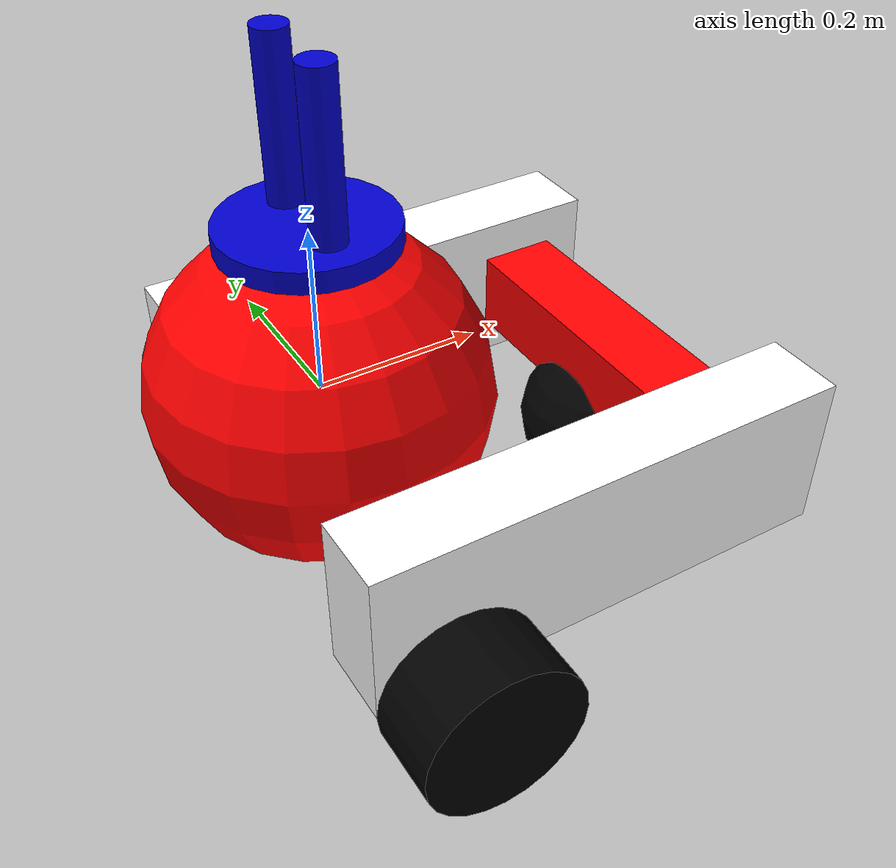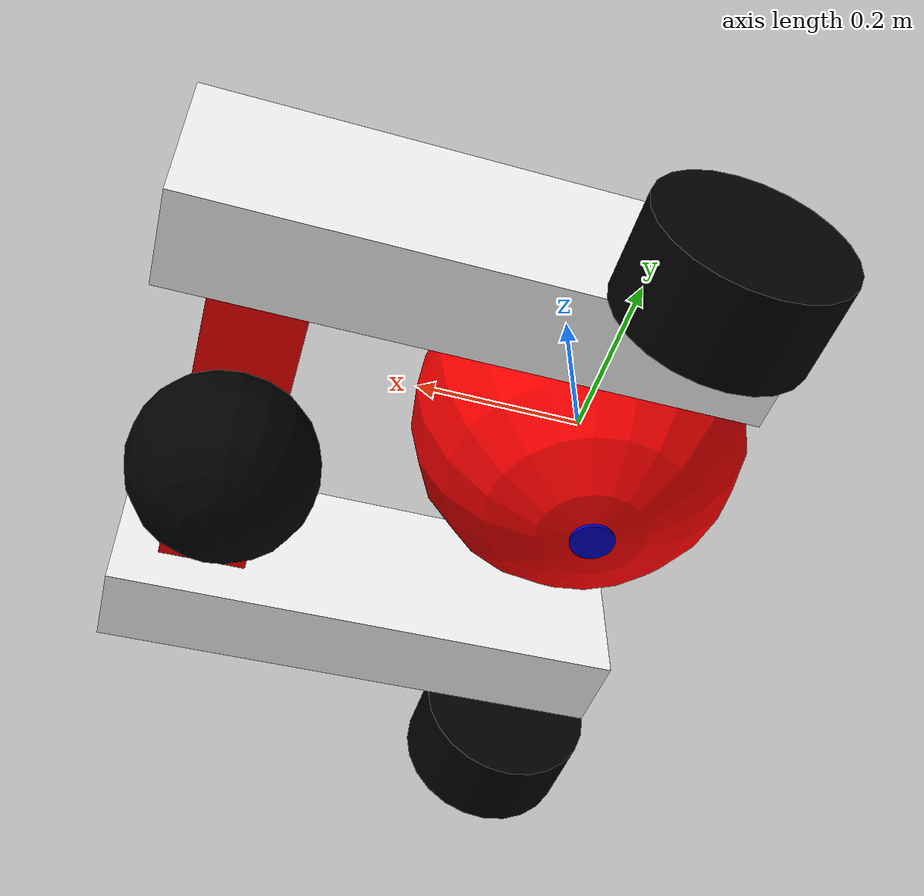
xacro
<?xml version="1.0"?>
<robot name="robot" xmlns:xacro="http://ros.org/wiki/xacro">

  <xacro:include filename="$(find robot_description)/urdf/gazebo.urdf.xacro" />
  <xacro:property name="width" value="0.2" />
  <xacro:property name="leglen" value="0.6" />
  <xacro:property name="legwidth" value="0.1" />
  <xacro:property name="legheight" value="0.2" />
  <xacro:property name="wheeldiam" value="0.2" />

  <material name="blue">
    <color rgba="0 0 0.8 1"/>
  </material>

  <material name="black">
    <color rgba="0 0 0 1"/>
  </material>

  <material name="white">
    <color rgba="1 1 1 1"/>
  </material>

  <material name="red">
    <color rgba="1 0 0 1"/>
  </material>

  <xacro:macro name="default_inertial" params="mass">
    <inertial>
      <mass value="${mass}" />
      <inertia ixx="1e-3" ixy="0.0" ixz="0.0" iyy="1e-3" iyz="0.0" izz="1e-3" />
    </inertial>
  </xacro:macro>

  <link name="base_link">
    <visual>
      <geometry>
        <sphere radius="${width}"/>
      </geometry>
      <material name="red"/>
    </visual>
    <collision>
      <geometry>
        <sphere radius="${width}"/>
      </geometry>
      <material name="red"/>
    </collision>
    <xacro:default_inertial mass="20"/>
  </link>

  <xacro:macro name="wheel" params="prefix">

    <link name="${prefix}_wheel">
      <visual>
        <origin xyz="0 0 0" rpy="${pi/2} 0 0" />
        <geometry>
          <cylinder radius="${wheeldiam/2}" length="${legwidth}" />
        </geometry>
        <material name="black"/>
      </visual>
      <collision>
        <origin xyz="0 0 0" rpy="${pi/2} 0 0" />
        <geometry>
          <cylinder radius="${wheeldiam/2}" length="0.1"/>
        </geometry>
      </collision>
      <xacro:default_inertial mass="1"/>
    </link>
    <joint name="${prefix}_wheel_joint" type="continuous">
      <axis xyz="0 1 0" rpy="0 0 0" />
      <parent link="${prefix}_leg"/>
      <child link="${prefix}_wheel"/>
      <origin xyz="-${leglen/3} ${legwidth * reflect} -${legheight/2}" rpy="0 0 0"/>
    </joint>

  </xacro:macro>
  <xacro:macro name="leg" params="prefix reflect">
    <link name="${prefix}_leg">
      <visual>
        <geometry>
          <box size="${leglen} ${legwidth} ${legheight}"/>
        </geometry>
        <origin xyz="0 0 0" rpy="0 0 0"/>
        <material name="white"/>
      </visual>
      <collision>
        <geometry>
          <box size="${leglen} ${legwidth} ${legheight}"/>
        </geometry>
        <origin xyz="0 0 0" rpy="0 0 0"/>
      </collision>
      <xacro:default_inertial mass="10"/>
    </link>

    <joint name="base_to_${prefix}_leg" type="fixed">
      <parent link="base_link"/>
      <child link="${prefix}_leg"/>
      <origin xyz="${leglen/3} ${reflect*(width+legwidth/2)} -${width/2}" />
    </joint>
    <xacro:wheel prefix="${prefix}" />
    <gazebo reference="${prefix}_wheel">
        <material>Gazebo/Blue</material>
    </gazebo>
  </xacro:macro>
  <xacro:leg prefix="right" reflect="-1" />
  <gazebo reference="right_leg">
        <material>Gazebo/Orange</material>
  </gazebo>
  <xacro:leg prefix="left" reflect="1" />
  <gazebo reference="left_leg">
        <material>Gazebo/Orange</material>
  </gazebo>

  <link name="caster_base">
    <visual>
      <geometry>
        <box size="${2*width} ${legheight/2} ${legwidth}"/>
      </geometry>
      <origin xyz="0 0 0" rpy="0 0 ${pi/2}"/>
      <material name="red"/>
    </visual>
    <collision>
      <geometry>
        <box size="${2*width} ${legheight/2} ${legwidth}"/>
      </geometry>
      <origin xyz="0 0 0" rpy="0 0 ${pi/2}"/>
      <material name="red"/>
    </collision>
    <xacro:default_inertial mass="10"/>
  </link>
  <joint name="base_to_caster_base" type="fixed">
    <parent link="base_link"/>
    <child link="caster_base"/>
    <origin xyz="${2*leglen/3} 0 -${width/2}" rpy="0 0 0"/>
  </joint>

  <link name="caster_wheel">
    <visual>
      <geometry>
        <sphere radius="${wheeldiam/2}"/>
      </geometry>
      <material name="black"/>
    </visual>
    <collision>
      <geometry>
        <sphere radius="${wheeldiam/2}"/>
      </geometry>
      <material name="black"/>
    </collision>
    <xacro:default_inertial mass="2"/>
  </link>
  <gazebo reference="caster_wheel">
        <material>Gazebo/White</material>
        <mu1 value="0.001"/>
        <mu2 value="0.001"/>
  </gazebo>
  <joint name="caster_wheel_to_caster_base" type="fixed">
    <parent link="caster_base"/>
    <child link="caster_wheel"/>
    <origin xyz="0 0 -${legheight/2}" rpy="0 0 0"/>
  </joint>

  <link name="antenna">
    <visual>
        <origin xyz="0 0 ${width}" rpy="0 0 0" />
        <geometry>
            <cylinder length="${width*2}" radius="${width/8}" />
        </geometry>
        <material name="blue"/>
    </visual>
    <collision>
        <origin xyz="0 0 ${width}" rpy="0 0 0" />
        <geometry>
            <cylinder length="${width*2}" radius="${width/8}" />
        </geometry>
        <material name="blue"/>
    </collision>
    <xacro:default_inertial mass="5"/>
  </link>
  <joint name="antenna_to_base" type="prismatic">
    <parent link="base_link"/>
    <child link="antenna"/>
    <origin xyz="0 0 -${width}" rpy="0 0 0"/>
    <limit effort="1000.0" lower="0" upper="${width*2}" velocity="0.5"/>
    <axis xyz="0 0 1"/>
  </joint>
  <link name="antenna_plate">
    <visual>
            <geometry>
                <cylinder length="${width/8}" radius="${width/2}" />
            </geometry>
            <material name="blue"/>
    </visual>
    <collision>
            <geometry>
                <cylinder length="${width/8}" radius="${width/2}" />
            </geometry>
            <material name="blue"/>
    </collision>
    <xacro:default_inertial mass="2"/>
  </link>
  <joint name="antenna_plate_joint" type="continuous">
    <parent link="antenna"/>
    <child link="antenna_plate"/>
    <origin xyz="0 0 ${width*2}" rpy="0 0 0"/>
    <axis xyz="0 0 1"/>
  </joint>
  <xacro:macro name="antenna_horn" params="prefix reflect">
    <link name="${prefix}_horn">
        <visual>
                <geometry>
                    <cylinder length="${width}" radius="${width/10}" />
                </geometry>
                <material name="blue"/>
        </visual>
        <collision>
                <geometry>
                    <cylinder length="${width}" radius="${width/10}" />
                </geometry>
                <material name="blue"/>
        </collision>
        <xacro:default_inertial mass="2"/>
    </link>
    <joint name="${prefix}_horn_to_antenna_plate" type="fixed">
        <parent link="antenna_plate"/>
        <child link="${prefix}_horn"/>
        <origin xyz="0 ${reflect*width/4} ${width/2}" rpy="0 0 0"/>
    </joint>
  </xacro:macro>
  <xacro:antenna_horn prefix="right" reflect="-1" />
  <xacro:antenna_horn prefix="left" reflect="1" />
</robot>
